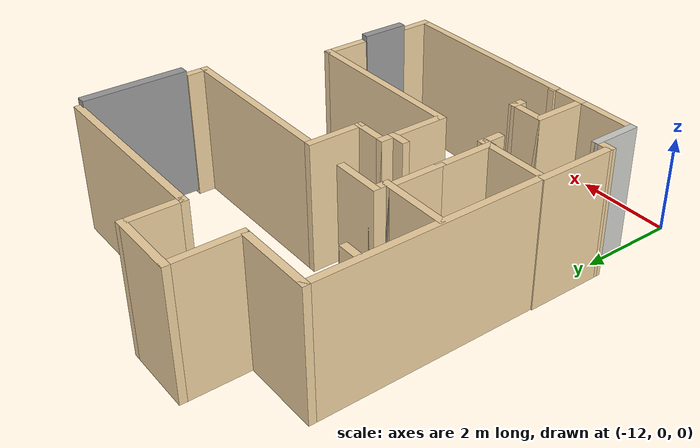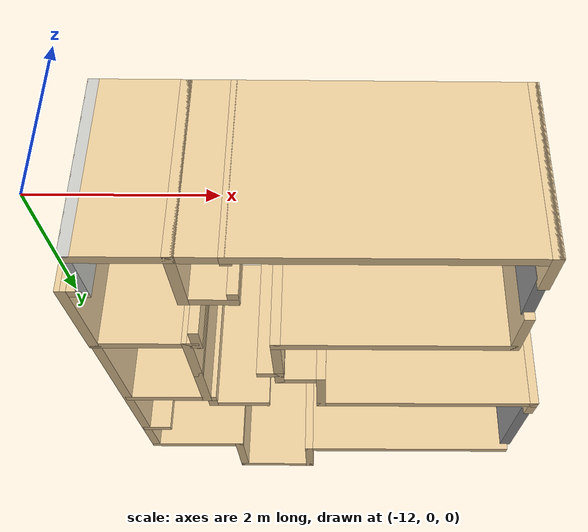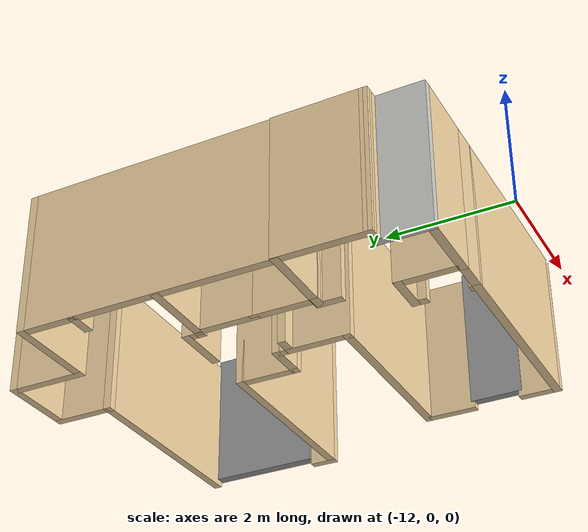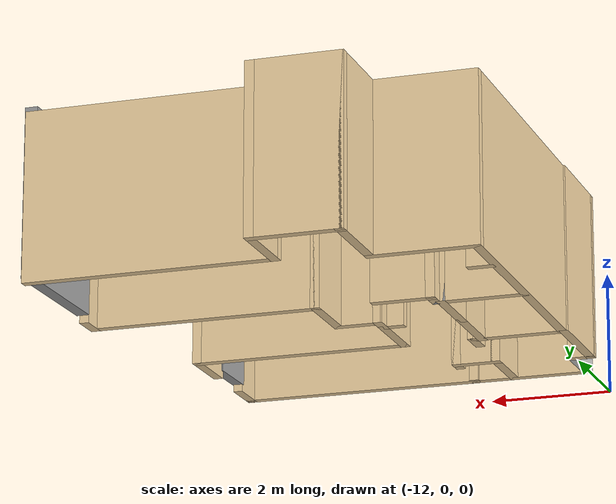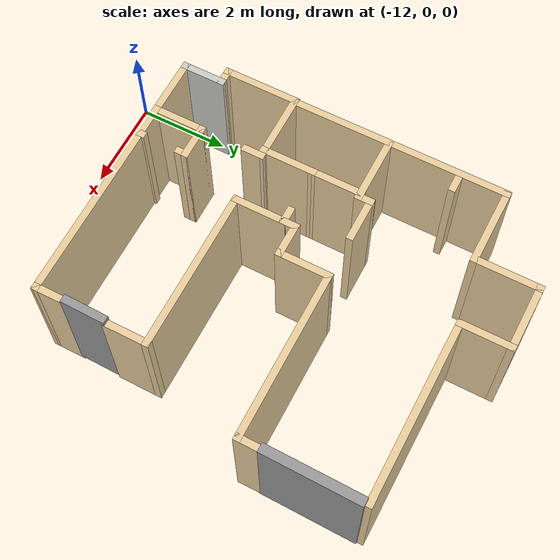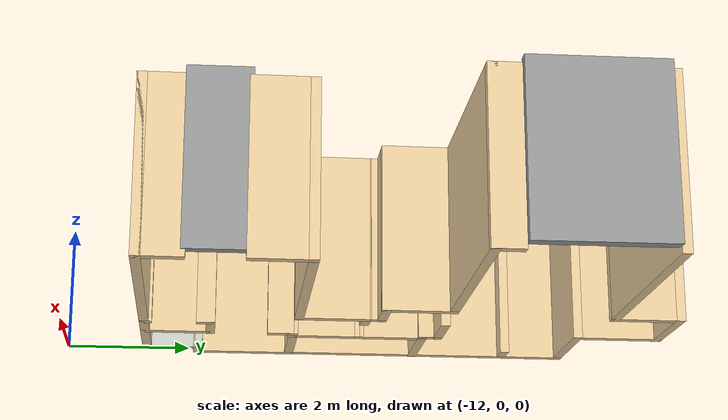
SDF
<?xml version='1.0'?>
<sdf version='1.6'>
  <model name='domitory_wall'>
    <pose frame=''>-8.81606 5.516 0 0 -0 0</pose>
    <link name='Wall_100'>
      <collision name='Wall_100_Collision'>
        <geometry>
          <box>
            <size>1.5 0.15 2.67</size>
          </box>
        </geometry>
        <pose frame=''>0 0 1.335 0 -0 0</pose>
      </collision>
      <visual name='Wall_100_Visual'>
        <pose frame=''>0 0 1.335 0 -0 0</pose>
        <geometry>
          <box>
            <size>1.5 0.15 2.67</size>
          </box>
        </geometry>
        <material>
          <script>
            <uri>file://media/materials/scripts/gazebo.material</uri>
            <name>Gazebo/Grey</name>
          </script>
          <ambient>0.921569 0.807843 0.615686 1</ambient>
        </material>
        <meta>
          <layer>0</layer>
        </meta>
      </visual>
      <pose frame=''>-2.67494 0.319 0 0 -0 3.14159</pose>
    </link>
    <link name='Wall_104'>
      <collision name='Wall_104_Collision'>
        <geometry>
          <box>
            <size>0.5 0.15 2.67</size>
          </box>
        </geometry>
        <pose frame=''>0 0 1.335 0 -0 0</pose>
      </collision>
      <visual name='Wall_104_Visual'>
        <pose frame=''>0 0 1.335 0 -0 0</pose>
        <geometry>
          <box>
            <size>0.5 0.15 2.67</size>
          </box>
        </geometry>
        <material>
          <script>
            <uri>file://media/materials/scripts/gazebo.material</uri>
            <name>Gazebo/Grey</name>
          </script>
          <ambient>0.921569 0.807843 0.615686 1</ambient>
        </material>
        <meta>
          <layer>0</layer>
        </meta>
      </visual>
      <pose frame=''>-3.19294 1.871 0 0 -0 0</pose>
    </link>
    <link name='Wall_106'>
      <collision name='Wall_106_Collision'>
        <geometry>
          <box>
            <size>0.5 0.15 2.67</size>
          </box>
        </geometry>
        <pose frame=''>0 0 1.335 0 -0 0</pose>
      </collision>
      <visual name='Wall_106_Visual'>
        <pose frame=''>0 0 1.335 0 -0 0</pose>
        <geometry>
          <box>
            <size>0.5 0.15 2.67</size>
          </box>
        </geometry>
        <material>
          <script>
            <uri>file://media/materials/scripts/gazebo.material</uri>
            <name>Gazebo/Grey</name>
          </script>
          <ambient>0.921569 0.807843 0.615686 1</ambient>
        </material>
        <meta>
          <layer>0</layer>
        </meta>
      </visual>
      <pose frame=''>3.41406 0.744 0 0 -0 1.5708</pose>
    </link>
    <link name='Wall_18'>
      <collision name='Wall_18_Collision'>
        <geometry>
          <box>
            <size>1.25 0.15 2.67</size>
          </box>
        </geometry>
        <pose frame=''>0 0 1.335 0 -0 0</pose>
      </collision>
      <visual name='Wall_18_Visual'>
        <pose frame=''>0 0 1.335 0 -0 0</pose>
        <geometry>
          <box>
            <size>1.25 0.15 2.67</size>
          </box>
        </geometry>
        <material>
          <script>
            <uri>file://media/materials/scripts/gazebo.material</uri>
            <name>Gazebo/Grey</name>
          </script>
          <ambient>0.921569 0.807843 0.615686 1</ambient>
        </material>
        <meta>
          <layer>0</layer>
        </meta>
      </visual>
      <pose frame=''>-2.08414 -1.281 0 0 -0 -1.57116</pose>
    </link>
    <link name='Wall_20'>
      <collision name='Wall_20_Collision'>
        <geometry>
          <box>
            <size>0.41996 0.15 2.67</size>
          </box>
        </geometry>
        <pose frame=''>0 0 1.335 0 -0 0</pose>
      </collision>
      <visual name='Wall_20_Visual'>
        <pose frame=''>0 0 1.335 0 -0 0</pose>
        <geometry>
          <box>
            <size>0.41996 0.15 2.67</size>
          </box>
        </geometry>
        <material>
          <script>
            <uri>file://media/materials/scripts/gazebo.material</uri>
            <name>Gazebo/Grey</name>
          </script>
          <ambient>0.921569 0.807843 0.615686 1</ambient>
        </material>
        <meta>
          <layer>0</layer>
        </meta>
      </visual>
      <pose frame=''>-0.971011 -0.730784 0 0 -0 -0.001598</pose>
    </link>
    <link name='Wall_22'>
      <collision name='Wall_22_Collision'>
        <geometry>
          <box>
            <size>0.25 0.15 2.67</size>
          </box>
        </geometry>
        <pose frame=''>0 0 1.335 0 -0 0</pose>
      </collision>
      <visual name='Wall_22_Visual'>
        <pose frame=''>0 0 1.335 0 -0 0</pose>
        <geometry>
          <box>
            <size>0.25 0.15 2.67</size>
          </box>
        </geometry>
        <material>
          <script>
            <uri>file://media/materials/scripts/gazebo.material</uri>
            <name>Gazebo/Grey</name>
          </script>
          <ambient>0.921569 0.807843 0.615686 1</ambient>
        </material>
        <meta>
          <layer>0</layer>
        </meta>
      </visual>
      <pose frame=''>-2.03434 -1.831 0 0 -0 0</pose>
    </link>
    <link name='Wall_34'>
      <collision name='Wall_34_Collision'>
        <geometry>
          <box>
            <size>1.6 0.15 2.67</size>
          </box>
        </geometry>
        <pose frame=''>0 0 1.335 0 -0 0</pose>
      </collision>
      <visual name='Wall_34_Visual'>
        <pose frame=''>0 0 1.335 0 -0 0</pose>
        <geometry>
          <box>
            <size>1.6 0.15 2.67</size>
          </box>
        </geometry>
        <material>
          <script>
            <uri>file://media/materials/scripts/gazebo.material</uri>
            <name>Gazebo/Grey</name>
          </script>
          <ambient>0.921569 0.807843 0.615686 1</ambient>
        </material>
        <meta>
          <layer>0</layer>
        </meta>
      </visual>
      <pose frame=''>-2.66894 -1.81487 0 0 -0 3.14141</pose>
    </link>
    <link name='Wall_36'>
      <collision name='Wall_36_Collision'>
        <geometry>
          <box>
            <size>1.70427 0.15 2.67</size>
          </box>
        </geometry>
        <pose frame=''>0 0 1.335 0 -0 0</pose>
      </collision>
      <visual name='Wall_36_Visual'>
        <pose frame=''>0 0 1.335 0 -0 0</pose>
        <geometry>
          <box>
            <size>1.70427 0.15 2.67</size>
          </box>
        </geometry>
        <material>
          <script>
            <uri>file://media/materials/scripts/gazebo.material</uri>
            <name>Gazebo/Grey</name>
          </script>
          <ambient>0.921569 0.807843 0.615686 1</ambient>
        </material>
        <meta>
          <layer>0</layer>
        </meta>
      </visual>
      <pose frame=''>-3.41269 -2.59187 0 0 -0 -1.57241</pose>
    </link>
    <link name='Wall_38'>
      <collision name='Wall_38_Collision'>
        <geometry>
          <box>
            <size>0.43 0.15 2.67</size>
          </box>
        </geometry>
        <pose frame=''>0 0 1.335 0 -0 0</pose>
      </collision>
      <visual name='Wall_38_Visual'>
        <pose frame=''>0 0 1.335 0 -0 0</pose>
        <geometry>
          <box>
            <size>0.43 0.15 2.67</size>
          </box>
        </geometry>
        <material>
          <script>
            <uri>file://media/materials/scripts/gazebo.material</uri>
            <name>Gazebo/Grey</name>
          </script>
          <ambient>0.921569 0.807843 0.615686 1</ambient>
        </material>
        <meta>
          <layer>0</layer>
        </meta>
      </visual>
      <pose frame=''>-3.27394 -3.369 0 0 -0 0</pose>
    </link>
    <link name='Wall_40'>
      <collision name='Wall_40_Collision'>
        <geometry>
          <box>
            <size>1 0.15 2.67</size>
          </box>
        </geometry>
        <pose frame=''>0 0 1.335 0 -0 0</pose>
      </collision>
      <visual name='Wall_40_Visual'>
        <pose frame=''>0 0 1.335 0 -0 0</pose>
        <geometry>
          <box>
            <size>1 0.15 2.67</size>
          </box>
        </geometry>
        <material>
          <script>
            <uri>file://media/materials/scripts/gazebo.material</uri>
            <name>Gazebo/CeilingTiled</name>
          </script>
          <ambient>0.921569 0.807843 0.615686 1</ambient>
        </material>
        <meta>
          <layer>0</layer>
        </meta>
      </visual>
      <pose frame=''>-3.13394 -3.794 0 0 -0 -1.5708</pose>
    </link>
    <link name='Wall_42'>
      <collision name='Wall_42_Collision'>
        <geometry>
          <box>
            <size>0.5 0.15 2.67</size>
          </box>
        </geometry>
        <pose frame=''>0 0 1.335 0 -0 0</pose>
      </collision>
      <visual name='Wall_42_Visual'>
        <pose frame=''>0 0 1.335 0 -0 0</pose>
        <geometry>
          <box>
            <size>0.5 0.15 2.67</size>
          </box>
        </geometry>
        <material>
          <script>
            <uri>file://media/materials/scripts/gazebo.material</uri>
            <name>Gazebo/Grey</name>
          </script>
          <ambient>0.921569 0.807843 0.615686 1</ambient>
        </material>
        <meta>
          <layer>0</layer>
        </meta>
      </visual>
      <pose frame=''>-1.94394 -1.99 0 0 -0 -1.5708</pose>
    </link>
    <link name='Wall_44'>
      <collision name='Wall_44_Collision'>
        <geometry>
          <box>
            <size>1.35 0.15 2.67</size>
          </box>
        </geometry>
        <pose frame=''>0 0 1.335 0 -0 0</pose>
      </collision>
      <visual name='Wall_44_Visual'>
        <pose frame=''>0 0 1.335 0 -0 0</pose>
        <geometry>
          <box>
            <size>1.35 0.15 2.67</size>
          </box>
        </geometry>
        <material>
          <script>
            <uri>file://media/materials/scripts/gazebo.material</uri>
            <name>Gazebo/Grey</name>
          </script>
          <ambient>0.921569 0.807843 0.615686 1</ambient>
        </material>
        <meta>
          <layer>0</layer>
        </meta>
      </visual>
      <pose frame=''>-2.53394 -4.219 0 0 -0 0</pose>
    </link>
    <link name='Wall_48'>
      <collision name='Wall_48_Collision'>
        <geometry>
          <box>
            <size>1.2 0.15 2.67</size>
          </box>
        </geometry>
        <pose frame=''>0 0 1.335 0 -0 0</pose>
      </collision>
      <visual name='Wall_48_Visual'>
        <pose frame=''>0 0 1.335 0 -0 0</pose>
        <geometry>
          <box>
            <size>1.2 0.15 2.67</size>
          </box>
        </geometry>
        <material>
          <script>
            <uri>file://media/materials/scripts/gazebo.material</uri>
            <name>Gazebo/Grey</name>
          </script>
          <ambient>0.921569 0.807843 0.615686 1</ambient>
        </material>
        <meta>
          <layer>0</layer>
        </meta>
      </visual>
      <pose frame=''>-1.93394 -3.694 0 0 -0 1.5708</pose>
    </link>
    <link name='Wall_50'>
      <collision name='Wall_50_Collision'>
        <geometry>
          <box>
            <size>0.8 0.15 2.67</size>
          </box>
        </geometry>
        <pose frame=''>0 0 1.335 0 -0 0</pose>
      </collision>
      <visual name='Wall_50_Visual'>
        <pose frame=''>0 0 1.335 0 -0 0</pose>
        <geometry>
          <box>
            <size>0.8 0.15 2.67</size>
          </box>
        </geometry>
        <material>
          <script>
            <uri>file://media/materials/scripts/gazebo.material</uri>
            <name>Gazebo/Grey</name>
          </script>
          <ambient>0.921569 0.807843 0.615686 1</ambient>
        </material>
        <meta>
          <layer>0</layer>
        </meta>
      </visual>
      <pose frame=''>-1.60894 -4.219 0 0 -0 0</pose>
    </link>
    <link name='Wall_52'>
      <collision name='Wall_52_Collision'>
        <geometry>
          <box>
            <size>0.8 0.15 2.67</size>
          </box>
        </geometry>
        <pose frame=''>0 0 1.335 0 -0 0</pose>
      </collision>
      <visual name='Wall_52_Visual'>
        <pose frame=''>0 0 1.335 0 -0 0</pose>
        <geometry>
          <box>
            <size>0.8 0.15 2.67</size>
          </box>
        </geometry>
        <material>
          <script>
            <uri>file://media/materials/scripts/gazebo.material</uri>
            <name>Gazebo/Grey</name>
          </script>
          <ambient>0.921569 0.807843 0.615686 1</ambient>
        </material>
        <meta>
          <layer>0</layer>
        </meta>
      </visual>
      <pose frame=''>-1.60894 -3.169 0 0 -0 0</pose>
    </link>
    <link name='Wall_54'>
      <collision name='Wall_54_Collision'>
        <geometry>
          <box>
            <size>0.3 0.15 2.67</size>
          </box>
        </geometry>
        <pose frame=''>0 0 1.335 0 -0 0</pose>
      </collision>
      <visual name='Wall_54_Visual'>
        <pose frame=''>0 0 1.335 0 -0 0</pose>
        <geometry>
          <box>
            <size>0.3 0.15 2.67</size>
          </box>
        </geometry>
        <material>
          <script>
            <uri>file://media/materials/scripts/gazebo.material</uri>
            <name>Gazebo/Grey</name>
          </script>
          <ambient>0.921569 0.807843 0.615686 1</ambient>
        </material>
        <meta>
          <layer>0</layer>
        </meta>
      </visual>
      <pose frame=''>-1.28394 -3.244 0 0 -0 -1.5708</pose>
    </link>
    <link name='Wall_56'>
      <collision name='Wall_56_Collision'>
        <geometry>
          <box>
            <size>0.2 0.15 2.67</size>
          </box>
        </geometry>
        <pose frame=''>0 0 1.335 0 -0 0</pose>
      </collision>
      <visual name='Wall_56_Visual'>
        <pose frame=''>0 0 1.335 0 -0 0</pose>
        <geometry>
          <box>
            <size>0.2 0.15 2.67</size>
          </box>
        </geometry>
        <material>
          <script>
            <uri>file://media/materials/scripts/gazebo.material</uri>
            <name>Gazebo/Grey</name>
          </script>
          <ambient>0.921569 0.807843 0.615686 1</ambient>
        </material>
        <meta>
          <layer>0</layer>
        </meta>
      </visual>
      <pose frame=''>-1.28394 -4.194 0 0 -0 1.5708</pose>
    </link>
    <link name='Wall_58'>
      <collision name='Wall_58_Collision'>
        <geometry>
          <box>
            <size>4 0.15 2.67</size>
          </box>
        </geometry>
        <pose frame=''>0 0 1.335 0 -0 0</pose>
      </collision>
      <visual name='Wall_58_Visual'>
        <pose frame=''>0 0 1.335 0 -0 0</pose>
        <geometry>
          <box>
            <size>4 0.15 2.67</size>
          </box>
        </geometry>
        <material>
          <script>
            <uri>file://media/materials/scripts/gazebo.material</uri>
            <name>Gazebo/Grey</name>
          </script>
          <ambient>0.921569 0.807843 0.615686 1</ambient>
        </material>
        <meta>
          <layer>0</layer>
        </meta>
      </visual>
      <pose frame=''>0.641061 -4.219 0 0 -0 0</pose>
    </link>
    <link name='Wall_60'>
      <collision name='Wall_60_Collision'>
        <geometry>
          <box>
            <size>0.75 0.15 2.67</size>
          </box>
        </geometry>
        <pose frame=''>0 0 1.335 0 -0 0</pose>
      </collision>
      <visual name='Wall_60_Visual'>
        <pose frame=''>0 0 1.335 0 -0 0</pose>
        <geometry>
          <box>
            <size>0.75 0.15 2.67</size>
          </box>
        </geometry>
        <material>
          <script>
            <uri>file://media/materials/scripts/gazebo.material</uri>
            <name>Gazebo/Grey</name>
          </script>
          <ambient>0.921569 0.807843 0.615686 1</ambient>
        </material>
        <meta>
          <layer>0</layer>
        </meta>
      </visual>
      <pose frame=''>2.56606 -3.919 0 0 -0 1.5708</pose>
    </link>
    <link name='Wall_62'>
      <collision name='Wall_62_Collision'>
        <geometry>
          <box>
            <size>1 0.15 2.67</size>
          </box>
        </geometry>
        <pose frame=''>0 0 1.335 0 -0 0</pose>
      </collision>
      <visual name='Wall_62_Visual'>
        <pose frame=''>0 0 1.335 0 -0 0</pose>
        <geometry>
          <box>
            <size>1 0.15 2.67</size>
          </box>
        </geometry>
        <material>
          <script>
            <uri>file://media/materials/scripts/gazebo.material</uri>
            <name>Gazebo/Grey</name>
          </script>
          <ambient>0.921569 0.807843 0.615686 1</ambient>
        </material>
        <meta>
          <layer>0</layer>
        </meta>
      </visual>
      <pose frame=''>2.59406 -2.215 0 0 -0 1.5708</pose>
    </link>
    <link name='Wall_64'>
      <collision name='Wall_64_Collision'>
        <geometry>
          <box>
            <size>3.58 0.15 2.67</size>
          </box>
        </geometry>
        <pose frame=''>0 0 1.335 0 -0 0</pose>
      </collision>
      <visual name='Wall_64_Visual'>
        <pose frame=''>0 0 1.335 0 -0 0</pose>
        <geometry>
          <box>
            <size>3.58 0.15 2.67</size>
          </box>
        </geometry>
        <material>
          <script>
            <uri>file://media/materials/scripts/gazebo.material</uri>
            <name>Gazebo/Grey</name>
          </script>
          <ambient>0.921569 0.807843 0.615686 1</ambient>
        </material>
        <meta>
          <layer>0</layer>
        </meta>
      </visual>
      <pose frame=''>0.879061 -1.79 0 0 -0 3.14159</pose>
    </link>
    <link name='Wall_69'>
      <collision name='Wall_69_Collision'>
        <geometry>
          <box>
            <size>1.20986 0.15 2.67</size>
          </box>
        </geometry>
        <pose frame=''>0 0 1.335 0 -0 0</pose>
      </collision>
      <visual name='Wall_69_Visual'>
        <pose frame=''>0 0 1.335 0 -0 0</pose>
        <geometry>
          <box>
            <size>1.20986 0.15 2.67</size>
          </box>
        </geometry>
        <material>
          <script>
            <uri>file://media/materials/scripts/gazebo.material</uri>
            <name>Gazebo/Grey</name>
          </script>
          <ambient>0.921569 0.807843 0.615686 1</ambient>
        </material>
        <meta>
          <layer>0</layer>
        </meta>
      </visual>
      <pose frame=''>-0.83594 -1.2605 0 0 -0 -1.5708</pose>
    </link>
    <link name='Wall_71'>
      <collision name='Wall_71_Collision'>
        <geometry>
          <box>
            <size>1.2 0.15 2.67</size>
          </box>
        </geometry>
        <pose frame=''>0 0 1.335 0 -0 0</pose>
      </collision>
      <visual name='Wall_71_Visual'>
        <pose frame=''>0 0 1.335 0 -0 0</pose>
        <geometry>
          <box>
            <size>1.2 0.15 2.67</size>
          </box>
        </geometry>
        <material>
          <script>
            <uri>file://media/materials/scripts/gazebo.material</uri>
            <name>Gazebo/Grey</name>
          </script>
          <ambient>0.921569 0.807843 0.615686 1</ambient>
        </material>
        <meta>
          <layer>0</layer>
        </meta>
      </visual>
      <pose frame=''>-2.08394 -0.206 0 0 -0 1.5708</pose>
    </link>
    <link name='Wall_73'>
      <collision name='Wall_73_Collision'>
        <geometry>
          <box>
            <size>0.234 0.15 2.5</size>
          </box>
        </geometry>
        <pose frame=''>0 0 1.25 0 -0 0</pose>
      </collision>
      <visual name='Wall_73_Visual'>
        <pose frame=''>0 0 1.25 0 -0 0</pose>
        <geometry>
          <box>
            <size>0.234 0.15 2.5</size>
          </box>
        </geometry>
        <material>
          <script>
            <uri>file://media/materials/scripts/gazebo.material</uri>
            <name>Gazebo/Grey</name>
          </script>
          <ambient>1 1 1 1</ambient>
        </material>
        <meta>
          <layer>0</layer>
        </meta>
      </visual>
      <pose frame=''>-2.04194 0.319 0 0 -0 0</pose>
    </link>
    <link name='Wall_74'>
      <collision name='Wall_74_Collision'>
        <geometry>
          <box>
            <size>0.4 0.15 2.67</size>
          </box>
        </geometry>
        <pose frame=''>0 0 1.335 0 -0 0</pose>
      </collision>
      <visual name='Wall_74_Visual'>
        <pose frame=''>0 0 1.335 0 -0 0</pose>
        <geometry>
          <box>
            <size>0.4 0.15 2.67</size>
          </box>
        </geometry>
        <material>
          <script>
            <uri>file://media/materials/scripts/gazebo.material</uri>
            <name>Gazebo/Grey</name>
          </script>
          <ambient>0.921569 0.807843 0.615686 1</ambient>
        </material>
        <meta>
          <layer>0</layer>
        </meta>
      </visual>
      <pose frame=''>-1.99994 0.444 0 0 -0 1.5708</pose>
    </link>
    <link name='Wall_78'>
      <collision name='Wall_78_Collision'>
        <geometry>
          <box>
            <size>1.0156 0.15 2.67</size>
          </box>
        </geometry>
        <pose frame=''>0 0 1.335 0 -0 0</pose>
      </collision>
      <visual name='Wall_78_Visual'>
        <pose frame=''>0 0 1.335 0 -0 0</pose>
        <geometry>
          <box>
            <size>1.0156 0.15 2.67</size>
          </box>
        </geometry>
        <material>
          <script>
            <uri>file://media/materials/scripts/gazebo.material</uri>
            <name>Gazebo/Grey</name>
          </script>
          <ambient>0.921569 0.807843 0.615686 1</ambient>
        </material>
        <meta>
          <layer>0</layer>
        </meta>
      </visual>
      <pose frame=''>-1.56694 0.569 0 0 -0 0</pose>
    </link>
    <link name='Wall_80'>
      <collision name='Wall_80_Collision'>
        <geometry>
          <box>
            <size>0.4 0.15 2.67</size>
          </box>
        </geometry>
        <pose frame=''>0 0 1.335 0 -0 0</pose>
      </collision>
      <visual name='Wall_80_Visual'>
        <pose frame=''>0 0 1.335 0 -0 0</pose>
        <geometry>
          <box>
            <size>0.4 0.15 2.67</size>
          </box>
        </geometry>
        <material>
          <script>
            <uri>file://media/materials/scripts/gazebo.material</uri>
            <name>Gazebo/Grey</name>
          </script>
          <ambient>0.921569 0.807843 0.615686 1</ambient>
        </material>
        <meta>
          <layer>0</layer>
        </meta>
      </visual>
      <pose frame=''>-0.83594 -0.606 0 0 -0 1.5708</pose>
    </link>
    <link name='Wall_82'>
      <collision name='Wall_82_Collision'>
        <geometry>
          <box>
            <size>0.8 0.15 2.67</size>
          </box>
        </geometry>
        <pose frame=''>0 0 1.335 0 -0 0</pose>
      </collision>
      <visual name='Wall_82_Visual'>
        <pose frame=''>0 0 1.335 0 -0 0</pose>
        <geometry>
          <box>
            <size>0.8 0.15 2.67</size>
          </box>
        </geometry>
        <material>
          <script>
            <uri>file://media/materials/scripts/gazebo.material</uri>
            <name>Gazebo/Grey</name>
          </script>
          <ambient>0.921569 0.807843 0.615686 1</ambient>
        </material>
        <meta>
          <layer>0</layer>
        </meta>
      </visual>
      <pose frame=''>-0.510939 -0.481 0 0 -0 0</pose>
    </link>
    <link name='Wall_84'>
      <collision name='Wall_84_Collision'>
        <geometry>
          <box>
            <size>1.2 0.15 2.67</size>
          </box>
        </geometry>
        <pose frame=''>0 0 1.335 0 -0 0</pose>
      </collision>
      <visual name='Wall_84_Visual'>
        <pose frame=''>0 0 1.335 0 -0 0</pose>
        <geometry>
          <box>
            <size>1.2 0.15 2.67</size>
          </box>
        </geometry>
        <material>
          <script>
            <uri>file://media/materials/scripts/gazebo.material</uri>
            <name>Gazebo/Grey</name>
          </script>
          <ambient>0.921569 0.807843 0.615686 1</ambient>
        </material>
        <meta>
          <layer>0</layer>
        </meta>
      </visual>
      <pose frame=''>-0.185939 0.044 0 0 -0 1.5708</pose>
    </link>
    <link name='Wall_86'>
      <collision name='Wall_86_Collision'>
        <geometry>
          <box>
            <size>3.75 0.15 2.67</size>
          </box>
        </geometry>
        <pose frame=''>0 0 1.335 0 -0 0</pose>
      </collision>
      <visual name='Wall_86_Visual'>
        <pose frame=''>0 0 1.335 0 -0 0</pose>
        <geometry>
          <box>
            <size>3.75 0.15 2.67</size>
          </box>
        </geometry>
        <material>
          <script>
            <uri>file://media/materials/scripts/gazebo.material</uri>
            <name>Gazebo/Grey</name>
          </script>
          <ambient>0.921569 0.807843 0.615686 1</ambient>
        </material>
        <meta>
          <layer>0</layer>
        </meta>
      </visual>
      <pose frame=''>1.61406 0.569 0 0 -0 0</pose>
    </link>
    <link name='Wall_89'>
      <collision name='Wall_89_Collision'>
        <geometry>
          <box>
            <size>4 0.15 2.67</size>
          </box>
        </geometry>
        <pose frame=''>0 0 1.335 0 -0 0</pose>
      </collision>
      <visual name='Wall_89_Visual'>
        <pose frame=''>0 0 1.335 0 -0 0</pose>
        <geometry>
          <box>
            <size>4 0.15 2.67</size>
          </box>
        </geometry>
        <material>
          <script>
            <uri>file://media/materials/scripts/gazebo.material</uri>
            <name>Gazebo/Grey</name>
          </script>
          <ambient>0.921569 0.807843 0.615686 1</ambient>
        </material>
        <meta>
          <layer>0</layer>
        </meta>
      </visual>
      <pose frame=''>1.48906 3.169 0 0 -0 3.14159</pose>
    </link>
    <link name='Wall_90'>
      <collision name='Wall_90_Collision'>
        <geometry>
          <box>
            <size>1.2 0.15 2.67</size>
          </box>
        </geometry>
        <pose frame=''>0 0 1.335 0 -0 0</pose>
      </collision>
      <visual name='Wall_90_Visual'>
        <pose frame=''>0 0 1.335 0 -0 0</pose>
        <geometry>
          <box>
            <size>1.2 0.15 2.67</size>
          </box>
        </geometry>
        <material>
          <script>
            <uri>file://media/materials/scripts/gazebo.material</uri>
            <name>Gazebo/Grey</name>
          </script>
          <ambient>0.921569 0.807843 0.615686 1</ambient>
        </material>
        <meta>
          <layer>0</layer>
        </meta>
      </visual>
      <pose frame=''>-0.435939 3.694 0 0 -0 1.5708</pose>
    </link>
    <link name='Wall_92'>
      <collision name='Wall_92_Collision'>
        <geometry>
          <box>
            <size>1.5 0.15 2.67</size>
          </box>
        </geometry>
        <pose frame=''>0 0 1.335 0 -0 0</pose>
      </collision>
      <visual name='Wall_92_Visual'>
        <pose frame=''>0 0 1.335 0 -0 0</pose>
        <geometry>
          <box>
            <size>1.5 0.15 2.67</size>
          </box>
        </geometry>
        <material>
          <script>
            <uri>file://media/materials/scripts/gazebo.material</uri>
            <name>Gazebo/Grey</name>
          </script>
          <ambient>0.921569 0.807843 0.615686 1</ambient>
        </material>
        <meta>
          <layer>0</layer>
        </meta>
      </visual>
      <pose frame=''>-1.11094 4.219 0 0 -0 3.14159</pose>
    </link>
    <link name='Wall_93'>
      <collision name='Wall_93_Collision'>
        <geometry>
          <box>
            <size>1.5 0.15 2.67</size>
          </box>
        </geometry>
        <pose frame=''>0 0 1.335 0 -0 0</pose>
      </collision>
      <visual name='Wall_93_Visual'>
        <pose frame=''>0 0 1.335 0 -0 0</pose>
        <geometry>
          <box>
            <size>1.5 0.15 2.67</size>
          </box>
        </geometry>
        <material>
          <script>
            <uri>file://media/materials/scripts/gazebo.material</uri>
            <name>Gazebo/Grey</name>
          </script>
          <ambient>0.921569 0.807843 0.615686 1</ambient>
        </material>
        <meta>
          <layer>0</layer>
        </meta>
      </visual>
      <pose frame=''>-1.78594 3.544 0 0 -0 -1.5708</pose>
    </link>
    <link name='Wall_94'>
      <collision name='Wall_94_Collision'>
        <geometry>
          <box>
            <size>1.75 0.15 2.67</size>
          </box>
        </geometry>
        <pose frame=''>0 0 1.335 0 -0 0</pose>
      </collision>
      <visual name='Wall_94_Visual'>
        <pose frame=''>0 0 1.335 0 -0 0</pose>
        <geometry>
          <box>
            <size>1.75 0.15 2.67</size>
          </box>
        </geometry>
        <material>
          <script>
            <uri>file://media/materials/scripts/gazebo.material</uri>
            <name>Gazebo/Grey</name>
          </script>
          <ambient>0.921569 0.807843 0.615686 1</ambient>
        </material>
        <meta>
          <layer>0</layer>
        </meta>
      </visual>
      <pose frame=''>-2.58594 2.869 0 0 -0 3.14159</pose>
    </link>
    <link name='Wall_96'>
      <collision name='Wall_96_Collision'>
        <geometry>
          <box>
            <size>4.75 0.15 2.67</size>
          </box>
        </geometry>
        <pose frame=''>0 0 1.335 0 -0 0</pose>
      </collision>
      <visual name='Wall_96_Visual'>
        <pose frame=''>0 0 1.335 0 -0 0</pose>
        <geometry>
          <box>
            <size>4.75 0.15 2.67</size>
          </box>
        </geometry>
        <material>
          <script>
            <uri>file://media/materials/scripts/gazebo.material</uri>
            <name>Gazebo/Grey</name>
          </script>
          <ambient>0.921569 0.807843 0.615686 1</ambient>
        </material>
        <meta>
          <layer>0</layer>
        </meta>
      </visual>
      <pose frame=''>-3.38594 0.569 0 0 -0 -1.5708</pose>
    </link>
    <link name='Window_0'>
      <collision name='Window_0_Collision'>
        <geometry>
          <box>
            <size>0.96 0.17 2.67</size>
          </box>
        </geometry>
        <pose frame=''>0 0 0.95 0 -0 0</pose>
      </collision>
      <visual name='Window_0_Visual'>
        <pose frame=''>0 0 0.95 0 -0 0</pose>
        <geometry>
          <box>
            <size>0.96 0.17 2.67</size>
          </box>
        </geometry>
        <material>
          <script>
            <uri>file://media/materials/scripts/gazebo.material</uri>
            <name>Gazebo/Grey</name>
          </script>
        </material>
      </visual>
      <pose frame=''>2.57626 -3.12933 0.5 0 -0 1.55517</pose>
    </link>
    <link name='Window_1'>
      <collision name='Window_1_Collision'>
        <geometry>
          <box>
            <size>2.1 0.2 2.67</size>
          </box>
        </geometry>
        <pose frame=''>0 0 0.95 0 -0 0</pose>
      </collision>
      <visual name='Window_1_Visual'>
        <pose frame=''>0 0 0.95 0 -0 0</pose>
        <geometry>
          <box>
            <size>2.1 0.2 2.67</size>
          </box>
        </geometry>
        <material>
          <script>
            <uri>file://media/materials/scripts/gazebo.material</uri>
            <name>Gazebo/Grey</name>
          </script>
        </material>
      </visual>
      <pose frame=''>3.43737 2.06548 0.5 0 -0 1.55727</pose>
    </link>
    <static>1</static>
  </model>
</sdf>
